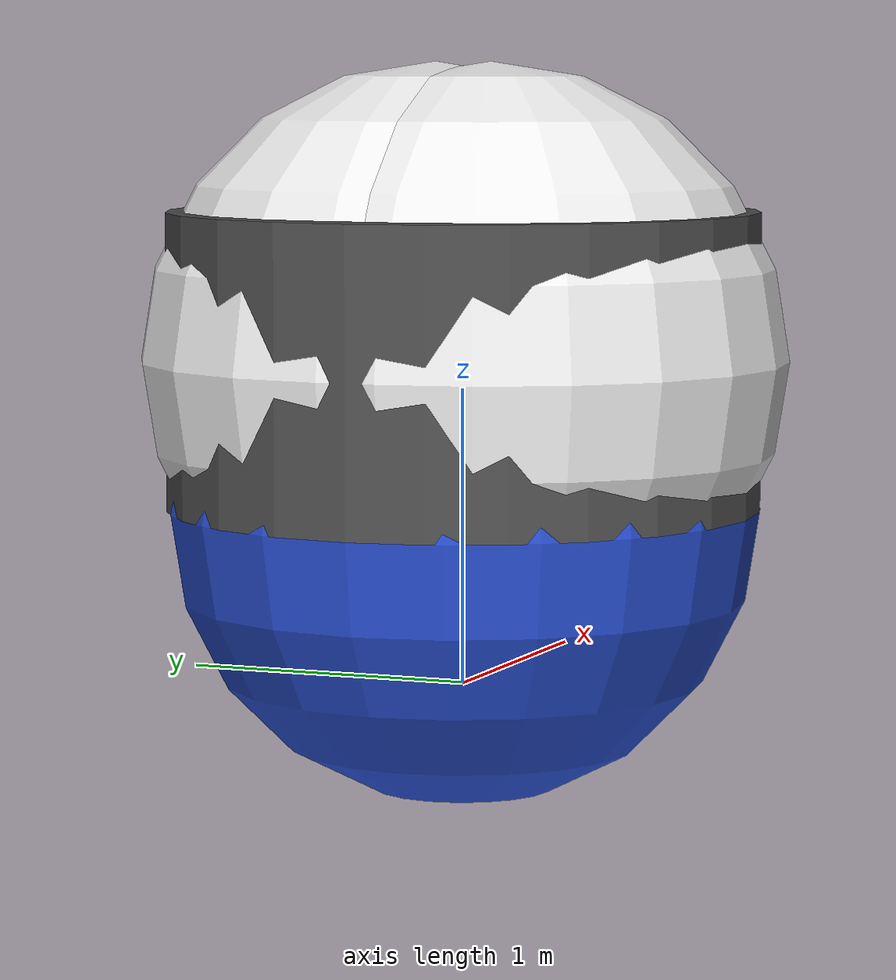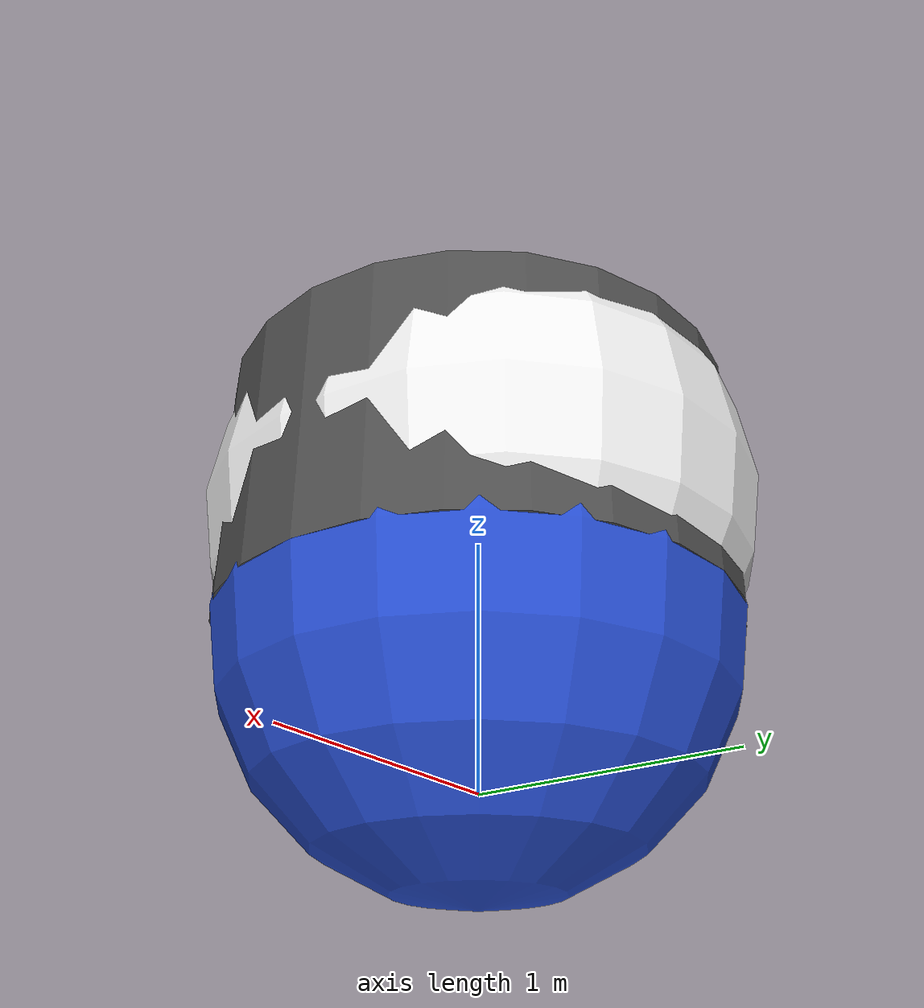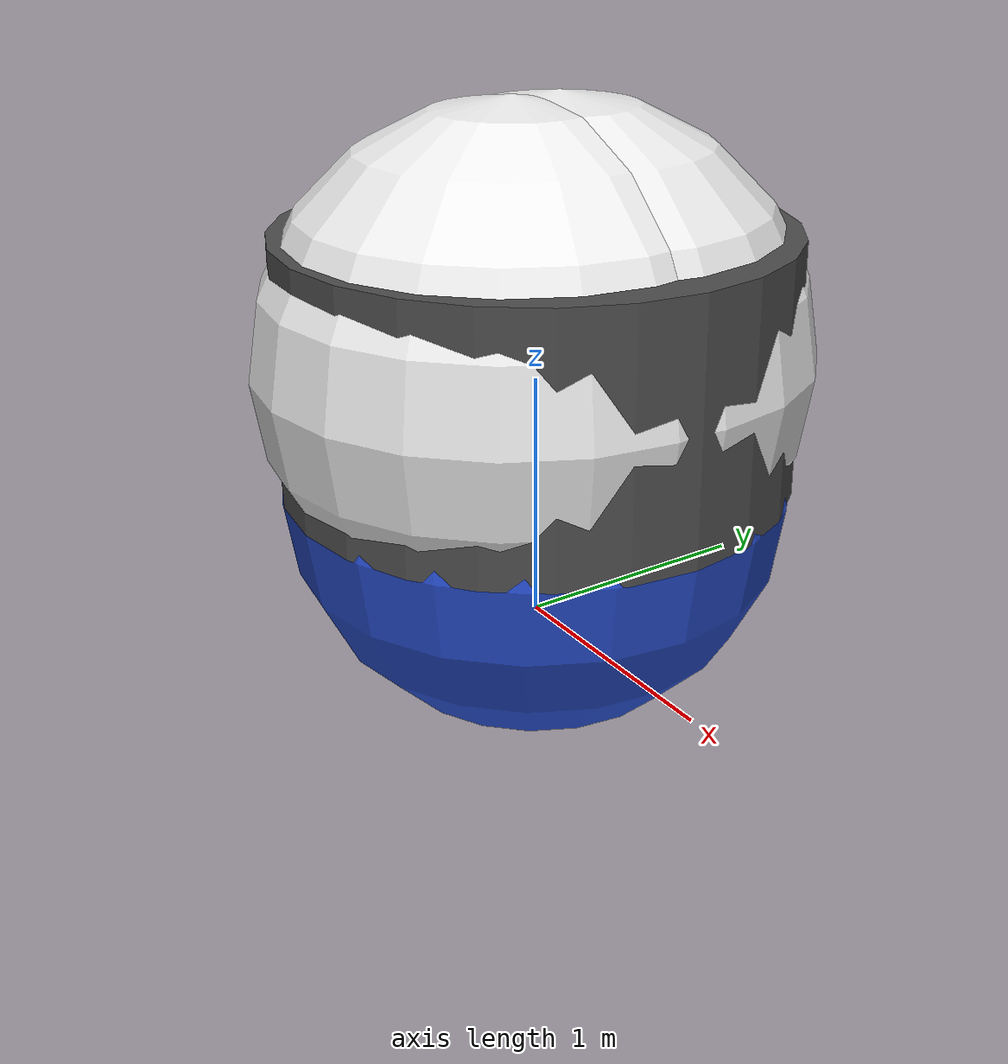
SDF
<sdf version='1.6'>
  <model name='lab06_radeeb'>
    <link name='base_link'>
      <pose frame=''>0 0 0 0 -0 0</pose>
      <inertial>
        <pose frame=''>0 0 0.841935 0 -0 0</pose>
        <mass>3246.31</mass>
        <inertia>
          <ixx>1396.49</ixx>
          <ixy>0</ixy>
          <ixz>0</ixz>
          <iyy>1396.49</iyy>
          <iyz>0</iyz>
          <izz>1455.6</izz>
        </inertia>
      </inertial>
      <collision name='base_link_fixed_joint_lump__robot_chassis_collision'>
        <pose frame=''>0 0 1.1 0 -0 0</pose>
        <geometry>
          <cylinder>
            <length>1</length>
            <radius>1</radius>
          </cylinder>
        </geometry>
        <surface>
          <contact>
            <ode/>
          </contact>
          <friction>
            <ode/>
          </friction>
        </surface>
      </collision>
      <collision name='base_link_fixed_joint_lump__camera_collision_1'>
        <pose frame=''>0 0 1.625 0 -0 0</pose>
        <geometry>
          <box>
            <size>0.05 0.05 0.05</size>
          </box>
        </geometry>
        <surface>
          <contact>
            <ode/>
          </contact>
          <friction>
            <ode/>
          </friction>
        </surface>
      </collision>
      <collision name='base_link_fixed_joint_lump__front_glide_collision_2'>
        <pose frame=''>0 0 0.6 0 -0 0</pose>
        <geometry>
          <sphere>
            <radius>1</radius>
          </sphere>
        </geometry>
        <surface>
          <contact>
            <ode/>
          </contact>
          <friction>
            <ode/>
          </friction>
        </surface>
      </collision>
      <collision name='base_link_fixed_joint_lump__rear_glide_collision_3'>
        <pose frame=''>0 0 0.6 0 -0 0</pose>
        <geometry>
          <sphere>
            <radius>1</radius>
          </sphere>
        </geometry>
        <surface>
          <contact>
            <ode/>
          </contact>
          <friction>
            <ode/>
          </friction>
        </surface>
      </collision>
      <visual name='base_link_fixed_joint_lump__robot_chassis_visual'>
        <pose frame=''>0 0 1.1 0 -0 0</pose>
        <geometry>
          <cylinder>
            <length>1</length>
            <radius>1</radius>
          </cylinder>
        </geometry>
        <material>
          <script>
            <name>Gazebo/DarkGray</name>
            <uri>file://media/materials/scripts/gazebo.material</uri>
          </script>
        </material>
      </visual>
      <visual name='base_link_fixed_joint_lump__camera_visual_1'>
        <pose frame=''>0 0 1.625 0 -0 0</pose>
        <geometry>
          <box>
            <size>0.05 0.05 0.05</size>
          </box>
        </geometry>
        <material>
          <script>
            <name>Gazebo/Red</name>
            <uri>file://media/materials/scripts/gazebo.material</uri>
          </script>
        </material>
      </visual>
      <visual name='base_link_fixed_joint_lump__front_glide_visual_2'>
        <pose frame=''>0 0 0.6 0 -0 0</pose>
        <geometry>
          <sphere>
            <radius>1</radius>
          </sphere>
        </geometry>
        <material>
          <script>
            <name>Gazebo/Blue</name>
            <uri>file://media/materials/scripts/gazebo.material</uri>
          </script>
        </material>
      </visual>
      <visual name='base_link_fixed_joint_lump__rear_glide_visual_3'>
        <pose frame=''>0 0 0.6 0 -0 0</pose>
        <geometry>
          <sphere>
            <radius>1</radius>
          </sphere>
        </geometry>
        <material>
          <script>
            <name>Gazebo/Blue</name>
            <uri>file://media/materials/scripts/gazebo.material</uri>
          </script>
        </material>
      </visual>
      <velocity_decay/>
      <velocity_decay/>
      <velocity_decay/>
      <sensor name='camera1' type='camera'>
        <update_rate>10</update_rate>
        <camera name='head'>
          <horizontal_fov>1.39626</horizontal_fov>
          <image>
            <width>640</width>
            <height>480</height>
            <format>R8G8B8</format>
          </image>
          <clip>
            <near>0.02</near>
            <far>300</far>
          </clip>
          <noise>
            <type>gaussian</type>
            <mean>0</mean>
            <stddev>0.007</stddev>
          </noise>
        </camera>
        <plugin name='camera_controller' filename='libgazebo_ros_camera.so'>
          <alwaysOn>true</alwaysOn>
          <updateRate>0.0</updateRate>
          <cameraName>lab06_radeeb/camera1</cameraName>
          <imageTopicName>image_raw</imageTopicName>
          <cameraInfoTopicName>camera_info</cameraInfoTopicName>
          <frameName>camera</frameName>
          <hackBaseline>0.07</hackBaseline>
          <distortionK1>0.0</distortionK1>
          <distortionK2>0.0</distortionK2>
          <distortionK3>0.0</distortionK3>
          <distortionT1>0.0</distortionT1>
          <distortionT2>0.0</distortionT2>
        </plugin>
        <pose frame=''>0 0 1.625 0 -0 0</pose>
      </sensor>
      <velocity_decay/>
      <gravity>1</gravity>
      <velocity_decay/>
    </link>
    <link name='left_wheel'>
      <pose frame=''>0 -0.1 1.1 0 -0 0</pose>
      <inertial>
        <pose frame=''>0 0 0 0 -0 0</pose>
        <mass>1256.64</mass>
        <inertia>
          <ixx>340.339</ixx>
          <ixy>0</ixy>
          <ixz>0</ixz>
          <iyy>340.339</iyy>
          <iyz>0</iyz>
          <izz>628.319</izz>
        </inertia>
      </inertial>
      <collision name='left_wheel_collision'>
        <pose frame=''>0 0 0 0 -0 0</pose>
        <geometry>
          <sphere>
            <radius>1</radius>
          </sphere>
        </geometry>
        <surface>
          <contact>
            <ode/>
          </contact>
          <friction>
            <ode/>
          </friction>
        </surface>
      </collision>
      <visual name='left_wheel_visual'>
        <pose frame=''>0 0 0 0 -0 0</pose>
        <geometry>
          <sphere>
            <radius>1</radius>
          </sphere>
        </geometry>
        <material>
          <script>
            <name>Gazebo/White</name>
            <uri>file://media/materials/scripts/gazebo.material</uri>
          </script>
        </material>
      </visual>
      <gravity>1</gravity>
      <velocity_decay/>
    </link>
    <joint name='left_wheel_joint' type='revolute'>
      <child>left_wheel</child>
      <parent>base_link</parent>
      <axis>
        <xyz>0 1 0</xyz>
        <limit>
          <lower>-1e+16</lower>
          <upper>1e+16</upper>
        </limit>
        <dynamics>
          <spring_reference>0</spring_reference>
          <spring_stiffness>0</spring_stiffness>
        </dynamics>
        <use_parent_model_frame>1</use_parent_model_frame>
      </axis>
    </joint>
    <link name='right_wheel'>
      <pose frame=''>0 0.1 1.1 0 -0 0</pose>
      <inertial>
        <pose frame=''>0 0 0 0 -0 0</pose>
        <mass>1256.64</mass>
        <inertia>
          <ixx>340.339</ixx>
          <ixy>0</ixy>
          <ixz>0</ixz>
          <iyy>340.339</iyy>
          <iyz>0</iyz>
          <izz>628.319</izz>
        </inertia>
      </inertial>
      <collision name='right_wheel_collision'>
        <pose frame=''>0 0 0 0 -0 0</pose>
        <geometry>
          <sphere>
            <radius>1</radius>
          </sphere>
        </geometry>
        <surface>
          <contact>
            <ode/>
          </contact>
          <friction>
            <ode/>
          </friction>
        </surface>
      </collision>
      <visual name='right_wheel_visual'>
        <pose frame=''>0 0 0 0 -0 0</pose>
        <geometry>
          <sphere>
            <radius>1</radius>
          </sphere>
        </geometry>
        <material>
          <script>
            <name>Gazebo/White</name>
            <uri>file://media/materials/scripts/gazebo.material</uri>
          </script>
        </material>
      </visual>
      <gravity>1</gravity>
      <velocity_decay/>
    </link>
    <joint name='right_wheel_joint' type='revolute'>
      <child>right_wheel</child>
      <parent>base_link</parent>
      <axis>
        <xyz>0 1 0</xyz>
        <limit>
          <lower>-1e+16</lower>
          <upper>1e+16</upper>
        </limit>
        <dynamics>
          <spring_reference>0</spring_reference>
          <spring_stiffness>0</spring_stiffness>
        </dynamics>
        <use_parent_model_frame>1</use_parent_model_frame>
      </axis>
    </joint>
    <static>0</static>
    <plugin name='differential_drive_controller' filename='libgazebo_ros_diff_drive.so'>
      <alwaysOn>true</alwaysOn>
      <updateRate>10</updateRate>
      <leftJoint>left_wheel_joint</leftJoint>
      <rightJoint>right_wheel_joint</rightJoint>
      <wheelSeparation>0</wheelSeparation>
      <wheelDiameter>1</wheelDiameter>
      <torque>20</torque>
      <commandTopic>cmd_vel</commandTopic>
      <odometryTopic>odom</odometryTopic>
      <odometryFrame>odom</odometryFrame>
      <robotBaseFrame>robot_chassis</robotBaseFrame>
    </plugin>
  </model>
</sdf>
